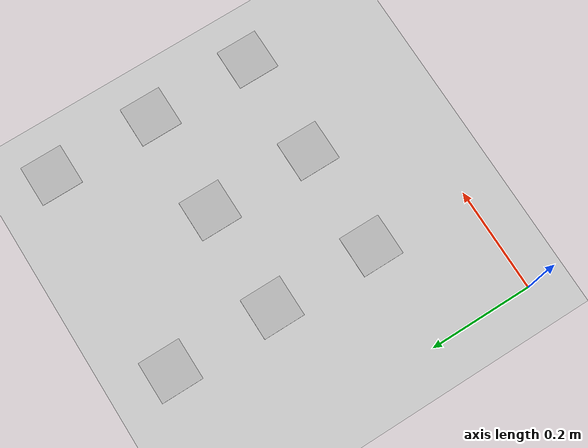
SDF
<sdf version="1.5">
 <world name="default">
  <include><uri>model://sun</uri></include>
  <include><uri>model://ground_plane</uri></include>
  <include><uri>model://asphalt_plane</uri></include>
  <include>
   <name>aruco_code_0</name>
   <uri>model://aruco_code_000</uri>
   <pose>0.2 0.2 0.052   0 0 0</pose>
  </include>
  <include>
   <name>aruco_code_2</name>
   <uri>model://aruco_code_002</uri>
   <pose>0.4 0.2 0.052   0 0 0</pose>
  </include>
  <include>
   <name>aruco_code_1</name>
   <uri>model://aruco_code_001</uri>
   <pose>0.6 0.2 0.052   0 0 0</pose>
  </include>
  <include>
   <name>aruco_code_3</name>
   <uri>model://aruco_code_003</uri>
   <pose>0.2 0.4 0.052   0 0 0</pose>
  </include>
  <include>
   <name>aruco_code_5</name>
   <uri>model://aruco_code_005</uri>
   <pose>0.4 0.4 0.052   0 0 0</pose>
  </include>
  <include>
   <name>aruco_code_4</name>
   <uri>model://aruco_code_004</uri>
   <pose>0.6 0.4 0.052   0 0 0</pose>
  </include>
  <include>
   <name>aruco_code_6</name>
   <uri>model://aruco_code_006</uri>
   <pose>0.2 0.6 0.052   0 0 0</pose>
  </include>
  <include>
   <name>aruco_code_7</name>
   <uri>model://aruco_code_007</uri>
   <pose>0.6 0.6 0.052   0 0 0</pose>
  </include>
  <physics name="default_physics" default="0" type="ode">
   <gravity>0 0 -9.8066</gravity>
   <ode>
    <solver>
     <type>quick</type>
     <iters>10</iters>
     <sor>1.3</sor>
     <use_dynamic_moi_rescaling>0</use_dynamic_moi_rescaling>
    </solver>
    <constraints>
     <cfm>0</cfm>
     <erp>0.2</erp>
     <contact_max_correcting_vel>100</contact_max_correcting_vel>
     <contact_surface_layer>0.001</contact_surface_layer>
    </constraints>
   </ode>
   <max_step_size>0.004</max_step_size>
   <real_time_factor>1</real_time_factor>
   <real_time_update_rate>250</real_time_update_rate>
   <magnetic_field>6.0e-6 2.3e-5 -4.2e-5</magnetic_field>
  </physics>
 </world>
</sdf>

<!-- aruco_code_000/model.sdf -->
<sdf version="1.4">
<model name="aruco_code_000">
    <static>true</static>
    <link name="link">
        <collision name="collision">
        <geometry>
            <box>
                <size>0.079 0.079 0.001</size>
            </box>
        </geometry>
        </collision>
    <visual name="visual">
        <geometry>
            <box>
                <size>0.079 0.079 0.001</size>
            </box>
        </geometry>
        <material>
            <script>
                <uri>model://aruco_code_000/materials/scripts</uri>
                <uri>model://aruco_code_000/materials/textures</uri>
                <name>ac/aruco_code_000</name>
            </script>
        </material>
    </visual>
    </link>
</model>
</sdf>

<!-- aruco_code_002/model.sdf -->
<sdf version="1.4">
<model name="aruco_code_002">
    <static>true</static>
    <link name="link">
        <collision name="collision">
        <geometry>
            <box>
                <size>0.079 0.079 0.001</size>
            </box>
        </geometry>
        </collision>
    <visual name="visual">
        <geometry>
            <box>
                <size>0.079 0.079 0.001</size>
            </box>
        </geometry>
        <material>
            <script>
                <uri>model://aruco_code_002/materials/scripts</uri>
                <uri>model://aruco_code_002/materials/textures</uri>
                <name>ac/aruco_code_002</name>
            </script>
        </material>
    </visual>
    </link>
</model>
</sdf>

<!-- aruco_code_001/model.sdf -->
<sdf version="1.4">
<model name="aruco_code_001">
    <static>true</static>
    <link name="link">
        <collision name="collision">
        <geometry>
            <box>
                <size>0.079 0.079 0.001</size>
            </box>
        </geometry>
        </collision>
    <visual name="visual">
        <geometry>
            <box>
                <size>0.079 0.079 0.001</size>
            </box>
        </geometry>
        <material>
            <script>
                <uri>model://aruco_code_001/materials/scripts</uri>
                <uri>model://aruco_code_001/materials/textures</uri>
                <name>ac/aruco_code_001</name>
            </script>
        </material>
    </visual>
    </link>
</model>
</sdf>

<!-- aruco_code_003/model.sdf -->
<sdf version="1.4">
<model name="aruco_code_003">
    <static>true</static>
    <link name="link">
        <collision name="collision">
        <geometry>
            <box>
                <size>0.079 0.079 0.001</size>
            </box>
        </geometry>
        </collision>
    <visual name="visual">
        <geometry>
            <box>
                <size>0.079 0.079 0.001</size>
            </box>
        </geometry>
        <material>
            <script>
                <uri>model://aruco_code_003/materials/scripts</uri>
                <uri>model://aruco_code_003/materials/textures</uri>
                <name>ac/aruco_code_003</name>
            </script>
        </material>
    </visual>
    </link>
</model>
</sdf>

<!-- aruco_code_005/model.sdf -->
<sdf version="1.4">
<model name="aruco_code_005">
    <static>true</static>
    <link name="link">
        <collision name="collision">
        <geometry>
            <box>
                <size>0.079 0.079 0.001</size>
            </box>
        </geometry>
        </collision>
    <visual name="visual">
        <geometry>
            <box>
                <size>0.079 0.079 0.001</size>
            </box>
        </geometry>
        <material>
            <script>
                <uri>model://aruco_code_005/materials/scripts</uri>
                <uri>model://aruco_code_005/materials/textures</uri>
                <name>ac/aruco_code_005</name>
            </script>
        </material>
    </visual>
    </link>
</model>
</sdf>

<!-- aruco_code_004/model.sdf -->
<sdf version="1.4">
<model name="aruco_code_004">
    <static>true</static>
    <link name="link">
        <collision name="collision">
        <geometry>
            <box>
                <size>0.079 0.079 0.001</size>
            </box>
        </geometry>
        </collision>
    <visual name="visual">
        <geometry>
            <box>
                <size>0.079 0.079 0.001</size>
            </box>
        </geometry>
        <material>
            <script>
                <uri>model://aruco_code_004/materials/scripts</uri>
                <uri>model://aruco_code_004/materials/textures</uri>
                <name>ac/aruco_code_004</name>
            </script>
        </material>
    </visual>
    </link>
</model>
</sdf>

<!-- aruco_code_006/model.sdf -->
<sdf version="1.4">
<model name="aruco_code_006">
    <static>true</static>
    <link name="link">
        <collision name="collision">
        <geometry>
            <box>
                <size>0.079 0.079 0.001</size>
            </box>
        </geometry>
        </collision>
    <visual name="visual">
        <geometry>
            <box>
                <size>0.079 0.079 0.001</size>
            </box>
        </geometry>
        <material>
            <script>
                <uri>model://aruco_code_006/materials/scripts</uri>
                <uri>model://aruco_code_006/materials/textures</uri>
                <name>ac/aruco_code_006</name>
            </script>
        </material>
    </visual>
    </link>
</model>
</sdf>

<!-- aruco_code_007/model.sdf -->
<sdf version="1.4">
<model name="aruco_code_007">
    <static>true</static>
    <link name="link">
        <collision name="collision">
        <geometry>
            <box>
                <size>0.079 0.079 0.001</size>
            </box>
        </geometry>
        </collision>
    <visual name="visual">
        <geometry>
            <box>
                <size>0.079 0.079 0.001</size>
            </box>
        </geometry>
        <material>
            <script>
                <uri>model://aruco_code_007/materials/scripts</uri>
                <uri>model://aruco_code_007/materials/textures</uri>
                <name>ac/aruco_code_007</name>
            </script>
        </material>
    </visual>
    </link>
</model>
</sdf>
